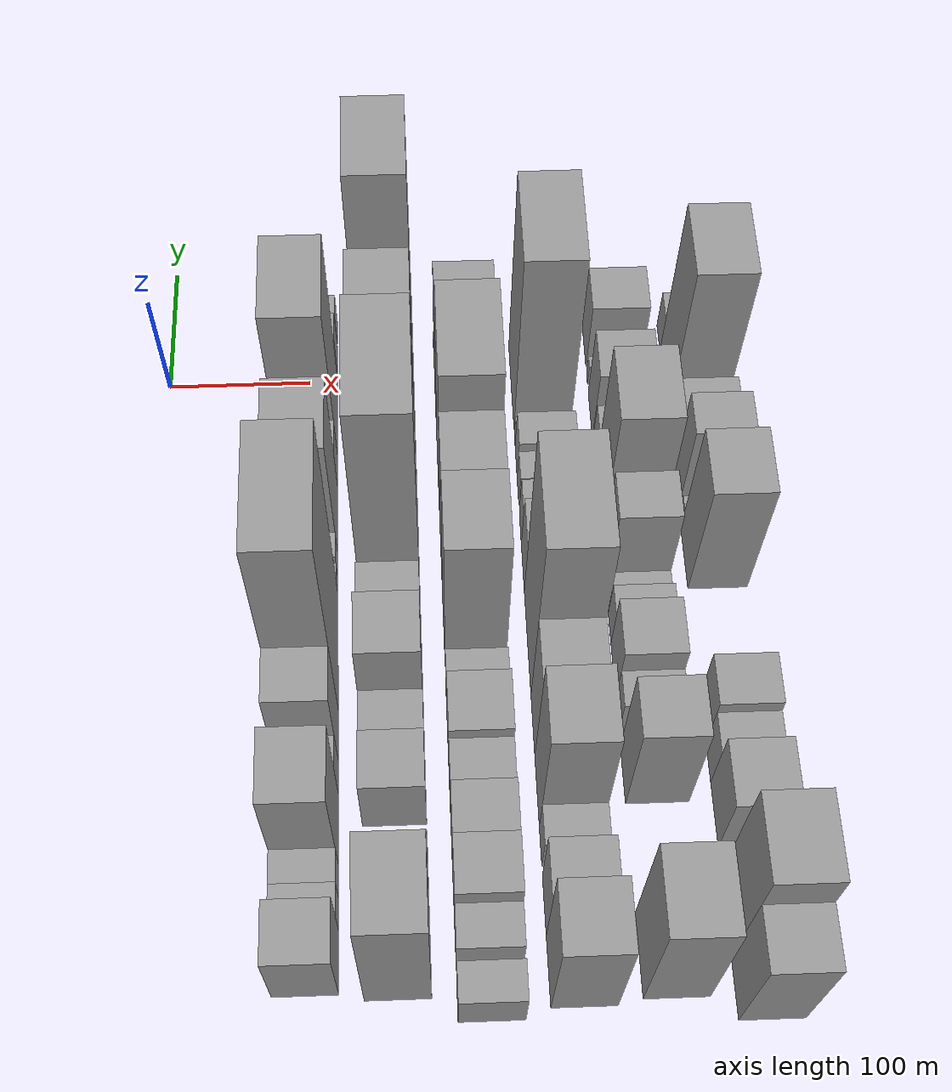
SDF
<sdf version="1.6">
 <world name="default">
  <model name="building_10">
   <static>1</static>
   <pose>100.0000 -418.1166 0 0.000000 0.000000 0.000000</pose>
   <link name="link">
    <pose>0 0 37.50 0 0 0</pose>
    <collision name="collision"><geometry><box><size>40.0000 37.5377 75.0000</size></box></geometry></collision>
    <visual name="visual">
     <cast_shadows>0</cast_shadows>
     <geometry><box><size>40.0000 37.5377 75.0000</size></box></geometry>
     <material>
      <script>
       <uri>model://grey_wall/materials/scripts</uri>
       <uri>model://grey_wall/materials/textures</uri>
       <name>vrc/grey_wall</name>
      </script>
     </material>
    </visual>
   </link>
  </model>
  <model name="building_11">
   <static>1</static>
   <pose>100.0000 -389.1185 0 0.000000 0.000000 0.000000</pose>
   <link name="link">
    <pose>0 0 18.00 0 0 0</pose>
    <collision name="collision"><geometry><box><size>40.0000 20.4583 36.0000</size></box></geometry></collision>
    <visual name="visual">
     <cast_shadows>0</cast_shadows>
     <geometry><box><size>40.0000 20.4583 36.0000</size></box></geometry>
     <material>
      <script>
       <uri>model://grey_wall/materials/scripts</uri>
       <uri>model://grey_wall/materials/textures</uri>
       <name>vrc/grey_wall</name>
      </script>
     </material>
    </visual>
   </link>
  </model>
  <model name="building_12">
   <static>1</static>
   <pose>100.0000 -368.4533 0 0.000000 0.000000 0.000000</pose>
   <link name="link">
    <pose>0 0 18.00 0 0 0</pose>
    <collision name="collision"><geometry><box><size>40.0000 20.8721 36.0000</size></box></geometry></collision>
    <visual name="visual">
     <cast_shadows>0</cast_shadows>
     <geometry><box><size>40.0000 20.8721 36.0000</size></box></geometry>
     <material>
      <script>
       <uri>model://grey_wall/materials/scripts</uri>
       <uri>model://grey_wall/materials/textures</uri>
       <name>vrc/grey_wall</name>
      </script>
     </material>
    </visual>
   </link>
  </model>
  <model name="building_13">
   <static>1</static>
   <pose>100.0000 -335.2118 0 0.000000 0.000000 0.000000</pose>
   <link name="link">
    <pose>0 0 58.50 0 0 0</pose>
    <collision name="collision"><geometry><box><size>40.0000 45.6110 117.0000</size></box></geometry></collision>
    <visual name="visual">
     <cast_shadows>0</cast_shadows>
     <geometry><box><size>40.0000 45.6110 117.0000</size></box></geometry>
     <material>
      <script>
       <uri>model://grey_wall/materials/scripts</uri>
       <uri>model://grey_wall/materials/textures</uri>
       <name>vrc/grey_wall</name>
      </script>
     </material>
    </visual>
   </link>
  </model>
  <model name="building_14">
   <static>1</static>
   <pose>100.0000 -301.1327 0 0.000000 0.000000 0.000000</pose>
   <link name="link">
    <pose>0 0 22.50 0 0 0</pose>
    <collision name="collision"><geometry><box><size>40.0000 22.5473 45.0000</size></box></geometry></collision>
    <visual name="visual">
     <cast_shadows>0</cast_shadows>
     <geometry><box><size>40.0000 22.5473 45.0000</size></box></geometry>
     <material>
      <script>
       <uri>model://grey_wall/materials/scripts</uri>
       <uri>model://grey_wall/materials/textures</uri>
       <name>vrc/grey_wall</name>
      </script>
     </material>
    </visual>
   </link>
  </model>
  <model name="building_15">
   <static>1</static>
   <pose>100.0000 -272.3482 0 0.000000 0.000000 0.000000</pose>
   <link name="link">
    <pose>0 0 49.50 0 0 0</pose>
    <collision name="collision"><geometry><box><size>40.0000 35.0216 99.0000</size></box></geometry></collision>
    <visual name="visual">
     <cast_shadows>0</cast_shadows>
     <geometry><box><size>40.0000 35.0216 99.0000</size></box></geometry>
     <material>
      <script>
       <uri>model://grey_wall/materials/scripts</uri>
       <uri>model://grey_wall/materials/textures</uri>
       <name>vrc/grey_wall</name>
      </script>
     </material>
    </visual>
   </link>
  </model>
  <model name="building_16">
   <static>1</static>
   <pose>100.0000 -213.4402 0 0.000000 0.000000 0.000000</pose>
   <link name="link">
    <pose>0 0 109.50 0 0 0</pose>
    <collision name="collision"><geometry><box><size>40.0000 82.7944 219.0000</size></box></geometry></collision>
    <visual name="visual">
     <cast_shadows>0</cast_shadows>
     <geometry><box><size>40.0000 82.7944 219.0000</size></box></geometry>
     <material>
      <script>
       <uri>model://grey_wall/materials/scripts</uri>
       <uri>model://grey_wall/materials/textures</uri>
       <name>vrc/grey_wall</name>
      </script>
     </material>
    </visual>
   </link>
  </model>
  <model name="building_17">
   <static>1</static>
   <pose>100.0000 -166.0867 0 0.000000 0.000000 0.000000</pose>
   <link name="link">
    <pose>0 0 12.00 0 0 0</pose>
    <collision name="collision"><geometry><box><size>40.0000 11.9127 24.0000</size></box></geometry></collision>
    <visual name="visual">
     <cast_shadows>0</cast_shadows>
     <geometry><box><size>40.0000 11.9127 24.0000</size></box></geometry>
     <material>
      <script>
       <uri>model://grey_wall/materials/scripts</uri>
       <uri>model://grey_wall/materials/textures</uri>
       <name>vrc/grey_wall</name>
      </script>
     </material>
    </visual>
   </link>
  </model>
  <model name="building_18">
   <static>1</static>
   <pose>100.0000 -150.8019 0 0.000000 0.000000 0.000000</pose>
   <link name="link">
    <pose>0 0 16.50 0 0 0</pose>
    <collision name="collision"><geometry><box><size>40.0000 18.6569 33.0000</size></box></geometry></collision>
    <visual name="visual">
     <cast_shadows>0</cast_shadows>
     <geometry><box><size>40.0000 18.6569 33.0000</size></box></geometry>
     <material>
      <script>
       <uri>model://grey_wall/materials/scripts</uri>
       <uri>model://grey_wall/materials/textures</uri>
       <name>vrc/grey_wall</name>
      </script>
     </material>
    </visual>
   </link>
  </model>
  <model name="building_19">
   <static>1</static>
   <pose>100.0000 -115.2629 0 0.000000 0.000000 0.000000</pose>
   <link name="link">
    <pose>0 0 69.00 0 0 0</pose>
    <collision name="collision"><geometry><box><size>40.0000 52.4211 138.0000</size></box></geometry></collision>
    <visual name="visual">
     <cast_shadows>0</cast_shadows>
     <geometry><box><size>40.0000 52.4211 138.0000</size></box></geometry>
     <material>
      <script>
       <uri>model://grey_wall/materials/scripts</uri>
       <uri>model://grey_wall/materials/textures</uri>
       <name>vrc/grey_wall</name>
      </script>
     </material>
    </visual>
   </link>
  </model>
  <model name="building_20">
   <static>1</static>
   <pose>100.0000 -76.1995 0 0.000000 0.000000 0.000000</pose>
   <link name="link">
    <pose>0 0 24.00 0 0 0</pose>
    <collision name="collision"><geometry><box><size>40.0000 25.7056 48.0000</size></box></geometry></collision>
    <visual name="visual">
     <cast_shadows>0</cast_shadows>
     <geometry><box><size>40.0000 25.7056 48.0000</size></box></geometry>
     <material>
      <script>
       <uri>model://grey_wall/materials/scripts</uri>
       <uri>model://grey_wall/materials/textures</uri>
       <name>vrc/grey_wall</name>
      </script>
     </material>
    </visual>
   </link>
  </model>
  <model name="building_21">
   <static>1</static>
   <pose>100.0000 -31.2883 0 0.000000 0.000000 0.000000</pose>
   <link name="link">
    <pose>0 0 82.50 0 0 0</pose>
    <collision name="collision"><geometry><box><size>40.0000 64.1168 165.0000</size></box></geometry></collision>
    <visual name="visual">
     <cast_shadows>0</cast_shadows>
     <geometry><box><size>40.0000 64.1168 165.0000</size></box></geometry>
     <material>
      <script>
       <uri>model://grey_wall/materials/scripts</uri>
       <uri>model://grey_wall/materials/textures</uri>
       <name>vrc/grey_wall</name>
      </script>
     </material>
    </visual>
   </link>
  </model>
  <model name="building_22">
   <static>1</static>
   <pose>100.0000 18.5439 0 0.000000 0.000000 0.000000</pose>
   <link name="link">
    <pose>0 0 21.00 0 0 0</pose>
    <collision name="collision"><geometry><box><size>40.0000 23.5476 42.0000</size></box></geometry></collision>
    <visual name="visual">
     <cast_shadows>0</cast_shadows>
     <geometry><box><size>40.0000 23.5476 42.0000</size></box></geometry>
     <material>
      <script>
       <uri>model://grey_wall/materials/scripts</uri>
       <uri>model://grey_wall/materials/textures</uri>
       <name>vrc/grey_wall</name>
      </script>
     </material>
    </visual>
   </link>
  </model>
  <model name="building_23">
   <static>1</static>
   <pose>100.0000 43.1436 0 0.000000 0.000000 0.000000</pose>
   <link name="link">
    <pose>0 0 16.50 0 0 0</pose>
    <collision name="collision"><geometry><box><size>40.0000 19.6517 33.0000</size></box></geometry></collision>
    <visual name="visual">
     <cast_shadows>0</cast_shadows>
     <geometry><box><size>40.0000 19.6517 33.0000</size></box></geometry>
     <material>
      <script>
       <uri>model://grey_wall/materials/scripts</uri>
       <uri>model://grey_wall/materials/textures</uri>
       <name>vrc/grey_wall</name>
      </script>
     </material>
    </visual>
   </link>
  </model>
  <model name="building_63">
   <static>1</static>
   <pose>155.0000 -413.3014 0 0.000000 0.000000 0.000000</pose>
   <link name="link">
    <pose>0 0 73.50 0 0 0</pose>
    <collision name="collision"><geometry><box><size>40.0000 55.3907 147.0000</size></box></geometry></collision>
    <visual name="visual">
     <cast_shadows>0</cast_shadows>
     <geometry><box><size>40.0000 55.3907 147.0000</size></box></geometry>
     <material>
      <script>
       <uri>model://grey_wall/materials/scripts</uri>
       <uri>model://grey_wall/materials/textures</uri>
       <name>vrc/grey_wall</name>
      </script>
     </material>
    </visual>
   </link>
  </model>
  <model name="building_64">
   <static>1</static>
   <pose>155.0000 -370.1292 0 0.000000 0.000000 0.000000</pose>
   <link name="link">
    <pose>0 0 27.00 0 0 0</pose>
    <collision name="collision"><geometry><box><size>40.0000 30.9537 54.0000</size></box></geometry></collision>
    <visual name="visual">
     <cast_shadows>0</cast_shadows>
     <geometry><box><size>40.0000 30.9537 54.0000</size></box></geometry>
     <material>
      <script>
       <uri>model://grey_wall/materials/scripts</uri>
       <uri>model://grey_wall/materials/textures</uri>
       <name>vrc/grey_wall</name>
      </script>
     </material>
    </visual>
   </link>
  </model>
  <model name="building_65">
   <static>1</static>
   <pose>155.0000 -347.6323 0 0.000000 0.000000 0.000000</pose>
   <link name="link">
    <pose>0 0 9.00 0 0 0</pose>
    <collision name="collision"><geometry><box><size>40.0000 8.0401 18.0000</size></box></geometry></collision>
    <visual name="visual">
     <cast_shadows>0</cast_shadows>
     <geometry><box><size>40.0000 8.0401 18.0000</size></box></geometry>
     <material>
      <script>
       <uri>model://grey_wall/materials/scripts</uri>
       <uri>model://grey_wall/materials/textures</uri>
       <name>vrc/grey_wall</name>
      </script>
     </material>
    </visual>
   </link>
  </model>
  <model name="building_66">
   <static>1</static>
   <pose>155.0000 -315.2518 0 0.000000 0.000000 0.000000</pose>
   <link name="link">
    <pose>0 0 34.50 0 0 0</pose>
    <collision name="collision"><geometry><box><size>40.0000 36.7208 69.0000</size></box></geometry></collision>
    <visual name="visual">
     <cast_shadows>0</cast_shadows>
     <geometry><box><size>40.0000 36.7208 69.0000</size></box></geometry>
     <material>
      <script>
       <uri>model://grey_wall/materials/scripts</uri>
       <uri>model://grey_wall/materials/textures</uri>
       <name>vrc/grey_wall</name>
      </script>
     </material>
    </visual>
   </link>
  </model>
  <model name="building_67">
   <static>1</static>
   <pose>155.0000 -281.4649 0 0.000000 0.000000 0.000000</pose>
   <link name="link">
    <pose>0 0 28.50 0 0 0</pose>
    <collision name="collision"><geometry><box><size>40.0000 30.8529 57.0000</size></box></geometry></collision>
    <visual name="visual">
     <cast_shadows>0</cast_shadows>
     <geometry><box><size>40.0000 30.8529 57.0000</size></box></geometry>
     <material>
      <script>
       <uri>model://grey_wall/materials/scripts</uri>
       <uri>model://grey_wall/materials/textures</uri>
       <name>vrc/grey_wall</name>
      </script>
     </material>
    </visual>
   </link>
  </model>
  <model name="building_68">
   <static>1</static>
   <pose>155.0000 -245.8051 0 0.000000 0.000000 0.000000</pose>
   <link name="link">
    <pose>0 0 55.50 0 0 0</pose>
    <collision name="collision"><geometry><box><size>40.0000 40.4668 111.0000</size></box></geometry></collision>
    <visual name="visual">
     <cast_shadows>0</cast_shadows>
     <geometry><box><size>40.0000 40.4668 111.0000</size></box></geometry>
     <material>
      <script>
       <uri>model://grey_wall/materials/scripts</uri>
       <uri>model://grey_wall/materials/textures</uri>
       <name>vrc/grey_wall</name>
      </script>
     </material>
    </visual>
   </link>
  </model>
  <model name="building_69">
   <static>1</static>
   <pose>155.0000 -205.2979 0 0.000000 0.000000 0.000000</pose>
   <link name="link">
    <pose>0 0 36.00 0 0 0</pose>
    <collision name="collision"><geometry><box><size>40.0000 40.5476 72.0000</size></box></geometry></collision>
    <visual name="visual">
     <cast_shadows>0</cast_shadows>
     <geometry><box><size>40.0000 40.5476 72.0000</size></box></geometry>
     <material>
      <script>
       <uri>model://grey_wall/materials/scripts</uri>
       <uri>model://grey_wall/materials/textures</uri>
       <name>vrc/grey_wall</name>
      </script>
     </material>
    </visual>
   </link>
  </model>
  <model name="building_70">
   <static>1</static>
   <pose>155.0000 -133.8732 0 0.000000 0.000000 0.000000</pose>
   <link name="link">
    <pose>0 0 112.50 0 0 0</pose>
    <collision name="collision"><geometry><box><size>40.0000 82.3018 225.0000</size></box></geometry></collision>
    <visual name="visual">
     <cast_shadows>0</cast_shadows>
     <geometry><box><size>40.0000 82.3018 225.0000</size></box></geometry>
     <material>
      <script>
       <uri>model://grey_wall/materials/scripts</uri>
       <uri>model://grey_wall/materials/textures</uri>
       <name>vrc/grey_wall</name>
      </script>
     </material>
    </visual>
   </link>
  </model>
  <model name="building_71">
   <static>1</static>
   <pose>155.0000 -59.0609 0 0.000000 0.000000 0.000000</pose>
   <link name="link">
    <pose>0 0 93.00 0 0 0</pose>
    <collision name="collision"><geometry><box><size>40.0000 61.3227 186.0000</size></box></geometry></collision>
    <visual name="visual">
     <cast_shadows>0</cast_shadows>
     <geometry><box><size>40.0000 61.3227 186.0000</size></box></geometry>
     <material>
      <script>
       <uri>model://grey_wall/materials/scripts</uri>
       <uri>model://grey_wall/materials/textures</uri>
       <name>vrc/grey_wall</name>
      </script>
     </material>
    </visual>
   </link>
  </model>
  <model name="building_72">
   <static>1</static>
   <pose>155.0000 -11.2397 0 0.000000 0.000000 0.000000</pose>
   <link name="link">
    <pose>0 0 31.50 0 0 0</pose>
    <collision name="collision"><geometry><box><size>40.0000 34.3198 63.0000</size></box></geometry></collision>
    <visual name="visual">
     <cast_shadows>0</cast_shadows>
     <geometry><box><size>40.0000 34.3198 63.0000</size></box></geometry>
     <material>
      <script>
       <uri>model://grey_wall/materials/scripts</uri>
       <uri>model://grey_wall/materials/textures</uri>
       <name>vrc/grey_wall</name>
      </script>
     </material>
    </visual>
   </link>
  </model>
  <model name="building_73">
   <static>1</static>
   <pose>155.0000 38.2795 0 0.000000 0.000000 0.000000</pose>
   <link name="link">
    <pose>0 0 106.50 0 0 0</pose>
    <collision name="collision"><geometry><box><size>40.0000 64.7186 213.0000</size></box></geometry></collision>
    <visual name="visual">
     <cast_shadows>0</cast_shadows>
     <geometry><box><size>40.0000 64.7186 213.0000</size></box></geometry>
     <material>
      <script>
       <uri>model://grey_wall/materials/scripts</uri>
       <uri>model://grey_wall/materials/textures</uri>
       <name>vrc/grey_wall</name>
      </script>
     </material>
    </visual>
   </link>
  </model>
  <model name="building_111">
   <static>1</static>
   <pose>210.0000 -443.2050 0 0.000000 0.000000 0.000000</pose>
   <link name="link">
    <pose>0 0 24.00 0 0 0</pose>
    <collision name="collision"><geometry><box><size>40.0000 24.2456 48.0000</size></box></geometry></collision>
    <visual name="visual">
     <cast_shadows>0</cast_shadows>
     <geometry><box><size>40.0000 24.2456 48.0000</size></box></geometry>
     <material>
      <script>
       <uri>model://grey_wall/materials/scripts</uri>
       <uri>model://grey_wall/materials/textures</uri>
       <name>vrc/grey_wall</name>
      </script>
     </material>
    </visual>
   </link>
  </model>
  <model name="building_112">
   <static>1</static>
   <pose>210.0000 -411.8444 0 0.000000 0.000000 0.000000</pose>
   <link name="link">
    <pose>0 0 25.50 0 0 0</pose>
    <collision name="collision"><geometry><box><size>40.0000 26.4756 51.0000</size></box></geometry></collision>
    <visual name="visual">
     <cast_shadows>0</cast_shadows>
     <geometry><box><size>40.0000 26.4756 51.0000</size></box></geometry>
     <material>
      <script>
       <uri>model://grey_wall/materials/scripts</uri>
       <uri>model://grey_wall/materials/textures</uri>
       <name>vrc/grey_wall</name>
      </script>
     </material>
    </visual>
   </link>
  </model>
  <model name="building_113">
   <static>1</static>
   <pose>210.0000 -380.3695 0 0.000000 0.000000 0.000000</pose>
   <link name="link">
    <pose>0 0 34.50 0 0 0</pose>
    <collision name="collision"><geometry><box><size>40.0000 36.4743 69.0000</size></box></geometry></collision>
    <visual name="visual">
     <cast_shadows>0</cast_shadows>
     <geometry><box><size>40.0000 36.4743 69.0000</size></box></geometry>
     <material>
      <script>
       <uri>model://grey_wall/materials/scripts</uri>
       <uri>model://grey_wall/materials/textures</uri>
       <name>vrc/grey_wall</name>
      </script>
     </material>
    </visual>
   </link>
  </model>
  <model name="building_114">
   <static>1</static>
   <pose>210.0000 -345.5111 0 0.000000 0.000000 0.000000</pose>
   <link name="link">
    <pose>0 0 33.00 0 0 0</pose>
    <collision name="collision"><geometry><box><size>40.0000 33.2425 66.0000</size></box></geometry></collision>
    <visual name="visual">
     <cast_shadows>0</cast_shadows>
     <geometry><box><size>40.0000 33.2425 66.0000</size></box></geometry>
     <material>
      <script>
       <uri>model://grey_wall/materials/scripts</uri>
       <uri>model://grey_wall/materials/textures</uri>
       <name>vrc/grey_wall</name>
      </script>
     </material>
    </visual>
   </link>
  </model>
  <model name="building_115">
   <static>1</static>
   <pose>210.0000 -313.5242 0 0.000000 0.000000 0.000000</pose>
   <link name="link">
    <pose>0 0 27.00 0 0 0</pose>
    <collision name="collision"><geometry><box><size>40.0000 30.7312 54.0000</size></box></geometry></collision>
    <visual name="visual">
     <cast_shadows>0</cast_shadows>
     <geometry><box><size>40.0000 30.7312 54.0000</size></box></geometry>
     <material>
      <script>
       <uri>model://grey_wall/materials/scripts</uri>
       <uri>model://grey_wall/materials/textures</uri>
       <name>vrc/grey_wall</name>
      </script>
     </material>
    </visual>
   </link>
  </model>
  <model name="building_116">
   <static>1</static>
   <pose>210.0000 -278.5037 0 0.000000 0.000000 0.000000</pose>
   <link name="link">
    <pose>0 0 33.00 0 0 0</pose>
    <collision name="collision"><geometry><box><size>40.0000 39.3099 66.0000</size></box></geometry></collision>
    <visual name="visual">
     <cast_shadows>0</cast_shadows>
     <geometry><box><size>40.0000 39.3099 66.0000</size></box></geometry>
     <material>
      <script>
       <uri>model://grey_wall/materials/scripts</uri>
       <uri>model://grey_wall/materials/textures</uri>
       <name>vrc/grey_wall</name>
      </script>
     </material>
    </visual>
   </link>
  </model>
  <model name="building_117">
   <static>1</static>
   <pose>210.0000 -244.0748 0 0.000000 0.000000 0.000000</pose>
   <link name="link">
    <pose>0 0 21.00 0 0 0</pose>
    <collision name="collision"><geometry><box><size>40.0000 21.5480 42.0000</size></box></geometry></collision>
    <visual name="visual">
     <cast_shadows>0</cast_shadows>
     <geometry><box><size>40.0000 21.5480 42.0000</size></box></geometry>
     <material>
      <script>
       <uri>model://grey_wall/materials/scripts</uri>
       <uri>model://grey_wall/materials/textures</uri>
       <name>vrc/grey_wall</name>
      </script>
     </material>
    </visual>
   </link>
  </model>
  <model name="building_118">
   <static>1</static>
   <pose>210.0000 -198.7493 0 0.000000 0.000000 0.000000</pose>
   <link name="link">
    <pose>0 0 79.50 0 0 0</pose>
    <collision name="collision"><geometry><box><size>40.0000 53.1029 159.0000</size></box></geometry></collision>
    <visual name="visual">
     <cast_shadows>0</cast_shadows>
     <geometry><box><size>40.0000 53.1029 159.0000</size></box></geometry>
     <material>
      <script>
       <uri>model://grey_wall/materials/scripts</uri>
       <uri>model://grey_wall/materials/textures</uri>
       <name>vrc/grey_wall</name>
      </script>
     </material>
    </visual>
   </link>
  </model>
  <model name="building_119">
   <static>1</static>
   <pose>210.0000 -148.7562 0 0.000000 0.000000 0.000000</pose>
   <link name="link">
    <pose>0 0 75.00 0 0 0</pose>
    <collision name="collision"><geometry><box><size>40.0000 46.8835 150.0000</size></box></geometry></collision>
    <visual name="visual">
     <cast_shadows>0</cast_shadows>
     <geometry><box><size>40.0000 46.8835 150.0000</size></box></geometry>
     <material>
      <script>
       <uri>model://grey_wall/materials/scripts</uri>
       <uri>model://grey_wall/materials/textures</uri>
       <name>vrc/grey_wall</name>
      </script>
     </material>
    </visual>
   </link>
  </model>
  <model name="building_120">
   <static>1</static>
   <pose>210.0000 -87.0264 0 0.000000 0.000000 0.000000</pose>
   <link name="link">
    <pose>0 0 91.50 0 0 0</pose>
    <collision name="collision"><geometry><box><size>40.0000 70.5760 183.0000</size></box></geometry></collision>
    <visual name="visual">
     <cast_shadows>0</cast_shadows>
     <geometry><box><size>40.0000 70.5760 183.0000</size></box></geometry>
     <material>
      <script>
       <uri>model://grey_wall/materials/scripts</uri>
       <uri>model://grey_wall/materials/textures</uri>
       <name>vrc/grey_wall</name>
      </script>
     </material>
    </visual>
   </link>
  </model>
  <model name="building_121">
   <static>1</static>
   <pose>210.0000 -19.8621 0 0.000000 0.000000 0.000000</pose>
   <link name="link">
    <pose>0 0 64.50 0 0 0</pose>
    <collision name="collision"><geometry><box><size>40.0000 49.7526 129.0000</size></box></geometry></collision>
    <visual name="visual">
     <cast_shadows>0</cast_shadows>
     <geometry><box><size>40.0000 49.7526 129.0000</size></box></geometry>
     <material>
      <script>
       <uri>model://grey_wall/materials/scripts</uri>
       <uri>model://grey_wall/materials/textures</uri>
       <name>vrc/grey_wall</name>
      </script>
     </material>
    </visual>
   </link>
  </model>
  <model name="building_122">
   <static>1</static>
   <pose>210.0000 16.7778 0 0.000000 0.000000 0.000000</pose>
   <link name="link">
    <pose>0 0 10.50 0 0 0</pose>
    <collision name="collision"><geometry><box><size>40.0000 9.5271 21.0000</size></box></geometry></collision>
    <visual name="visual">
     <cast_shadows>0</cast_shadows>
     <geometry><box><size>40.0000 9.5271 21.0000</size></box></geometry>
     <material>
      <script>
       <uri>model://grey_wall/materials/scripts</uri>
       <uri>model://grey_wall/materials/textures</uri>
       <name>vrc/grey_wall</name>
      </script>
     </material>
    </visual>
   </link>
  </model>
  <model name="building_123">
   <static>1</static>
   <pose>210.0000 25.4149 0 0.000000 0.000000 0.000000</pose>
   <link name="link">
    <pose>0 0 9.00 0 0 0</pose>
    <collision name="collision"><geometry><box><size>40.0000 7.7472 18.0000</size></box></geometry></collision>
    <visual name="visual">
     <cast_shadows>0</cast_shadows>
     <geometry><box><size>40.0000 7.7472 18.0000</size></box></geometry>
     <material>
      <script>
       <uri>model://grey_wall/materials/scripts</uri>
       <uri>model://grey_wall/materials/textures</uri>
       <name>vrc/grey_wall</name>
      </script>
     </material>
    </visual>
   </link>
  </model>
  <model name="building_168">
   <static>1</static>
   <pose>265.0000 -427.7121 0 0.000000 0.000000 0.000000</pose>
   <link name="link">
    <pose>0 0 60.00 0 0 0</pose>
    <collision name="collision"><geometry><box><size>40.0000 42.5895 120.0000</size></box></geometry></collision>
    <visual name="visual">
     <cast_shadows>0</cast_shadows>
     <geometry><box><size>40.0000 42.5895 120.0000</size></box></geometry>
     <material>
      <script>
       <uri>model://grey_wall/materials/scripts</uri>
       <uri>model://grey_wall/materials/textures</uri>
       <name>vrc/grey_wall</name>
      </script>
     </material>
    </visual>
   </link>
  </model>
  <model name="building_169">
   <static>1</static>
   <pose>265.0000 -387.6341 0 0.000000 0.000000 0.000000</pose>
   <link name="link">
    <pose>0 0 37.50 0 0 0</pose>
    <collision name="collision"><geometry><box><size>40.0000 37.5665 75.0000</size></box></geometry></collision>
    <visual name="visual">
     <cast_shadows>0</cast_shadows>
     <geometry><box><size>40.0000 37.5665 75.0000</size></box></geometry>
     <material>
      <script>
       <uri>model://grey_wall/materials/scripts</uri>
       <uri>model://grey_wall/materials/textures</uri>
       <name>vrc/grey_wall</name>
      </script>
     </material>
    </visual>
   </link>
  </model>
  <model name="building_170">
   <static>1</static>
   <pose>265.0000 -350.3621 0 0.000000 0.000000 0.000000</pose>
   <link name="link">
    <pose>0 0 21.00 0 0 0</pose>
    <collision name="collision"><geometry><box><size>40.0000 24.9775 42.0000</size></box></geometry></collision>
    <visual name="visual">
     <cast_shadows>0</cast_shadows>
     <geometry><box><size>40.0000 24.9775 42.0000</size></box></geometry>
     <material>
      <script>
       <uri>model://grey_wall/materials/scripts</uri>
       <uri>model://grey_wall/materials/textures</uri>
       <name>vrc/grey_wall</name>
      </script>
     </material>
    </visual>
   </link>
  </model>
  <model name="building_171">
   <static>1</static>
   <pose>265.0000 -314.4730 0 0.000000 0.000000 0.000000</pose>
   <link name="link">
    <pose>0 0 70.50 0 0 0</pose>
    <collision name="collision"><geometry><box><size>40.0000 46.8007 141.0000</size></box></geometry></collision>
    <visual name="visual">
     <cast_shadows>0</cast_shadows>
     <geometry><box><size>40.0000 46.8007 141.0000</size></box></geometry>
     <material>
      <script>
       <uri>model://grey_wall/materials/scripts</uri>
       <uri>model://grey_wall/materials/textures</uri>
       <name>vrc/grey_wall</name>
      </script>
     </material>
    </visual>
   </link>
  </model>
  <model name="building_172">
   <static>1</static>
   <pose>265.0000 -270.1294 0 0.000000 0.000000 0.000000</pose>
   <link name="link">
    <pose>0 0 57.00 0 0 0</pose>
    <collision name="collision"><geometry><box><size>40.0000 41.8864 114.0000</size></box></geometry></collision>
    <visual name="visual">
     <cast_shadows>0</cast_shadows>
     <geometry><box><size>40.0000 41.8864 114.0000</size></box></geometry>
     <material>
      <script>
       <uri>model://grey_wall/materials/scripts</uri>
       <uri>model://grey_wall/materials/textures</uri>
       <name>vrc/grey_wall</name>
      </script>
     </material>
    </visual>
   </link>
  </model>
  <model name="building_173">
   <static>1</static>
   <pose>265.0000 -211.3545 0 0.000000 0.000000 0.000000</pose>
   <link name="link">
    <pose>0 0 100.50 0 0 0</pose>
    <collision name="collision"><geometry><box><size>40.0000 75.6633 201.0000</size></box></geometry></collision>
    <visual name="visual">
     <cast_shadows>0</cast_shadows>
     <geometry><box><size>40.0000 75.6633 201.0000</size></box></geometry>
     <material>
      <script>
       <uri>model://grey_wall/materials/scripts</uri>
       <uri>model://grey_wall/materials/textures</uri>
       <name>vrc/grey_wall</name>
      </script>
     </material>
    </visual>
   </link>
  </model>
  <model name="building_174">
   <static>1</static>
   <pose>265.0000 -155.5771 0 0.000000 0.000000 0.000000</pose>
   <link name="link">
    <pose>0 0 31.50 0 0 0</pose>
    <collision name="collision"><geometry><box><size>40.0000 35.8916 63.0000</size></box></geometry></collision>
    <visual name="visual">
     <cast_shadows>0</cast_shadows>
     <geometry><box><size>40.0000 35.8916 63.0000</size></box></geometry>
     <material>
      <script>
       <uri>model://grey_wall/materials/scripts</uri>
       <uri>model://grey_wall/materials/textures</uri>
       <name>vrc/grey_wall</name>
      </script>
     </material>
    </visual>
   </link>
  </model>
  <model name="building_175">
   <static>1</static>
   <pose>265.0000 -125.1279 0 0.000000 0.000000 0.000000</pose>
   <link name="link">
    <pose>0 0 22.50 0 0 0</pose>
    <collision name="collision"><geometry><box><size>40.0000 25.0067 45.0000</size></box></geometry></collision>
    <visual name="visual">
     <cast_shadows>0</cast_shadows>
     <geometry><box><size>40.0000 25.0067 45.0000</size></box></geometry>
     <material>
      <script>
       <uri>model://grey_wall/materials/scripts</uri>
       <uri>model://grey_wall/materials/textures</uri>
       <name>vrc/grey_wall</name>
      </script>
     </material>
    </visual>
   </link>
  </model>
  <model name="building_176">
   <static>1</static>
   <pose>265.0000 -95.9091 0 0.000000 0.000000 0.000000</pose>
   <link name="link">
    <pose>0 0 18.00 0 0 0</pose>
    <collision name="collision"><geometry><box><size>40.0000 21.4309 36.0000</size></box></geometry></collision>
    <visual name="visual">
     <cast_shadows>0</cast_shadows>
     <geometry><box><size>40.0000 21.4309 36.0000</size></box></geometry>
     <material>
      <script>
       <uri>model://grey_wall/materials/scripts</uri>
       <uri>model://grey_wall/materials/textures</uri>
       <name>vrc/grey_wall</name>
      </script>
     </material>
    </visual>
   </link>
  </model>
  <model name="building_177">
   <static>1</static>
   <pose>265.0000 -72.2502 0 0.000000 0.000000 0.000000</pose>
   <link name="link">
    <pose>0 0 22.50 0 0 0</pose>
    <collision name="collision"><geometry><box><size>40.0000 25.8870 45.0000</size></box></geometry></collision>
    <visual name="visual">
     <cast_shadows>0</cast_shadows>
     <geometry><box><size>40.0000 25.8870 45.0000</size></box></geometry>
     <material>
      <script>
       <uri>model://grey_wall/materials/scripts</uri>
       <uri>model://grey_wall/materials/textures</uri>
       <name>vrc/grey_wall</name>
      </script>
     </material>
    </visual>
   </link>
  </model>
  <model name="building_178">
   <static>1</static>
   <pose>265.0000 -54.4343 0 0.000000 0.000000 0.000000</pose>
   <link name="link">
    <pose>0 0 12.00 0 0 0</pose>
    <collision name="collision"><geometry><box><size>40.0000 9.7447 24.0000</size></box></geometry></collision>
    <visual name="visual">
     <cast_shadows>0</cast_shadows>
     <geometry><box><size>40.0000 9.7447 24.0000</size></box></geometry>
     <material>
      <script>
       <uri>model://grey_wall/materials/scripts</uri>
       <uri>model://grey_wall/materials/textures</uri>
       <name>vrc/grey_wall</name>
      </script>
     </material>
    </visual>
   </link>
  </model>
  <model name="building_179">
   <static>1</static>
   <pose>265.0000 -8.8676 0 0.000000 0.000000 0.000000</pose>
   <link name="link">
    <pose>0 0 94.50 0 0 0</pose>
    <collision name="collision"><geometry><box><size>40.0000 71.3886 189.0000</size></box></geometry></collision>
    <visual name="visual">
     <cast_shadows>0</cast_shadows>
     <geometry><box><size>40.0000 71.3886 189.0000</size></box></geometry>
     <material>
      <script>
       <uri>model://grey_wall/materials/scripts</uri>
       <uri>model://grey_wall/materials/textures</uri>
       <name>vrc/grey_wall</name>
      </script>
     </material>
    </visual>
   </link>
  </model>
  <model name="building_215">
   <static>1</static>
   <pose>320.0000 -419.7920 0 0.000000 0.000000 0.000000</pose>
   <link name="link">
    <pose>0 0 67.50 0 0 0</pose>
    <collision name="collision"><geometry><box><size>40.0000 51.7668 135.0000</size></box></geometry></collision>
    <visual name="visual">
     <cast_shadows>0</cast_shadows>
     <geometry><box><size>40.0000 51.7668 135.0000</size></box></geometry>
     <material>
      <script>
       <uri>model://grey_wall/materials/scripts</uri>
       <uri>model://grey_wall/materials/textures</uri>
       <name>vrc/grey_wall</name>
      </script>
     </material>
    </visual>
   </link>
  </model>
  <model name="building_216">
   <static>1</static>
   <pose>320.0000 -305.5341 0 0.000000 0.000000 0.000000</pose>
   <link name="link">
    <pose>0 0 55.50 0 0 0</pose>
    <collision name="collision"><geometry><box><size>40.0000 38.2497 111.0000</size></box></geometry></collision>
    <visual name="visual">
     <cast_shadows>0</cast_shadows>
     <geometry><box><size>40.0000 38.2497 111.0000</size></box></geometry>
     <material>
      <script>
       <uri>model://grey_wall/materials/scripts</uri>
       <uri>model://grey_wall/materials/textures</uri>
       <name>vrc/grey_wall</name>
      </script>
     </material>
    </visual>
   </link>
  </model>
  <model name="building_217">
   <static>1</static>
   <pose>320.0000 -264.3094 0 0.000000 0.000000 0.000000</pose>
   <link name="link">
    <pose>0 0 21.00 0 0 0</pose>
    <collision name="collision"><geometry><box><size>40.0000 24.1997 42.0000</size></box></geometry></collision>
    <visual name="visual">
     <cast_shadows>0</cast_shadows>
     <geometry><box><size>40.0000 24.1997 42.0000</size></box></geometry>
     <material>
      <script>
       <uri>model://grey_wall/materials/scripts</uri>
       <uri>model://grey_wall/materials/textures</uri>
       <name>vrc/grey_wall</name>
      </script>
     </material>
    </visual>
   </link>
  </model>
  <model name="building_218">
   <static>1</static>
   <pose>320.0000 -232.9948 0 0.000000 0.000000 0.000000</pose>
   <link name="link">
    <pose>0 0 33.00 0 0 0</pose>
    <collision name="collision"><geometry><box><size>40.0000 38.4295 66.0000</size></box></geometry></collision>
    <visual name="visual">
     <cast_shadows>0</cast_shadows>
     <geometry><box><size>40.0000 38.4295 66.0000</size></box></geometry>
     <material>
      <script>
       <uri>model://grey_wall/materials/scripts</uri>
       <uri>model://grey_wall/materials/textures</uri>
       <name>vrc/grey_wall</name>
      </script>
     </material>
    </visual>
   </link>
  </model>
  <model name="building_219">
   <static>1</static>
   <pose>320.0000 -202.8050 0 0.000000 0.000000 0.000000</pose>
   <link name="link">
    <pose>0 0 21.00 0 0 0</pose>
    <collision name="collision"><geometry><box><size>40.0000 21.9502 42.0000</size></box></geometry></collision>
    <visual name="visual">
     <cast_shadows>0</cast_shadows>
     <geometry><box><size>40.0000 21.9502 42.0000</size></box></geometry>
     <material>
      <script>
       <uri>model://grey_wall/materials/scripts</uri>
       <uri>model://grey_wall/materials/textures</uri>
       <name>vrc/grey_wall</name>
      </script>
     </material>
    </visual>
   </link>
  </model>
  <model name="building_220">
   <static>1</static>
   <pose>320.0000 -184.1063 0 0.000000 0.000000 0.000000</pose>
   <link name="link">
    <pose>0 0 15.00 0 0 0</pose>
    <collision name="collision"><geometry><box><size>40.0000 15.4472 30.0000</size></box></geometry></collision>
    <visual name="visual">
     <cast_shadows>0</cast_shadows>
     <geometry><box><size>40.0000 15.4472 30.0000</size></box></geometry>
     <material>
      <script>
       <uri>model://grey_wall/materials/scripts</uri>
       <uri>model://grey_wall/materials/textures</uri>
       <name>vrc/grey_wall</name>
      </script>
     </material>
    </visual>
   </link>
  </model>
  <model name="building_221">
   <static>1</static>
   <pose>320.0000 -159.7665 0 0.000000 0.000000 0.000000</pose>
   <link name="link">
    <pose>0 0 51.00 0 0 0</pose>
    <collision name="collision"><geometry><box><size>40.0000 33.2323 102.0000</size></box></geometry></collision>
    <visual name="visual">
     <cast_shadows>0</cast_shadows>
     <geometry><box><size>40.0000 33.2323 102.0000</size></box></geometry>
     <material>
      <script>
       <uri>model://grey_wall/materials/scripts</uri>
       <uri>model://grey_wall/materials/textures</uri>
       <name>vrc/grey_wall</name>
      </script>
     </material>
    </visual>
   </link>
  </model>
  <model name="building_222">
   <static>1</static>
   <pose>320.0000 -108.2381 0 0.000000 0.000000 0.000000</pose>
   <link name="link">
    <pose>0 0 75.00 0 0 0</pose>
    <collision name="collision"><geometry><box><size>40.0000 53.8245 150.0000</size></box></geometry></collision>
    <visual name="visual">
     <cast_shadows>0</cast_shadows>
     <geometry><box><size>40.0000 53.8245 150.0000</size></box></geometry>
     <material>
      <script>
       <uri>model://grey_wall/materials/scripts</uri>
       <uri>model://grey_wall/materials/textures</uri>
       <name>vrc/grey_wall</name>
      </script>
     </material>
    </visual>
   </link>
  </model>
  <model name="building_223">
   <static>1</static>
   <pose>320.0000 -68.5845 0 0.000000 0.000000 0.000000</pose>
   <link name="link">
    <pose>0 0 22.50 0 0 0</pose>
    <collision name="collision"><geometry><box><size>40.0000 25.4828 45.0000</size></box></geometry></collision>
    <visual name="visual">
     <cast_shadows>0</cast_shadows>
     <geometry><box><size>40.0000 25.4828 45.0000</size></box></geometry>
     <material>
      <script>
       <uri>model://grey_wall/materials/scripts</uri>
       <uri>model://grey_wall/materials/textures</uri>
       <name>vrc/grey_wall</name>
      </script>
     </material>
    </visual>
   </link>
  </model>
  <model name="building_224">
   <static>1</static>
   <pose>320.0000 -33.8702 0 0.000000 0.000000 0.000000</pose>
   <link name="link">
    <pose>0 0 37.50 0 0 0</pose>
    <collision name="collision"><geometry><box><size>40.0000 37.9458 75.0000</size></box></geometry></collision>
    <visual name="visual">
     <cast_shadows>0</cast_shadows>
     <geometry><box><size>40.0000 37.9458 75.0000</size></box></geometry>
     <material>
      <script>
       <uri>model://grey_wall/materials/scripts</uri>
       <uri>model://grey_wall/materials/textures</uri>
       <name>vrc/grey_wall</name>
      </script>
     </material>
    </visual>
   </link>
  </model>
  <model name="building_225">
   <static>1</static>
   <pose>320.0000 -3.2689 0 0.000000 0.000000 0.000000</pose>
   <link name="link">
    <pose>0 0 10.50 0 0 0</pose>
    <collision name="collision"><geometry><box><size>40.0000 9.2568 21.0000</size></box></geometry></collision>
    <visual name="visual">
     <cast_shadows>0</cast_shadows>
     <geometry><box><size>40.0000 9.2568 21.0000</size></box></geometry>
     <material>
      <script>
       <uri>model://grey_wall/materials/scripts</uri>
       <uri>model://grey_wall/materials/textures</uri>
       <name>vrc/grey_wall</name>
      </script>
     </material>
    </visual>
   </link>
  </model>
  <model name="building_226">
   <static>1</static>
   <pose>320.0000 25.0802 0 0.000000 0.000000 0.000000</pose>
   <link name="link">
    <pose>0 0 34.50 0 0 0</pose>
    <collision name="collision"><geometry><box><size>40.0000 35.4413 69.0000</size></box></geometry></collision>
    <visual name="visual">
     <cast_shadows>0</cast_shadows>
     <geometry><box><size>40.0000 35.4413 69.0000</size></box></geometry>
     <material>
      <script>
       <uri>model://grey_wall/materials/scripts</uri>
       <uri>model://grey_wall/materials/textures</uri>
       <name>vrc/grey_wall</name>
      </script>
     </material>
    </visual>
   </link>
  </model>
  <model name="building_261">
   <static>1</static>
   <pose>375.0000 -441.2021 0 0.000000 0.000000 0.000000</pose>
   <link name="link">
    <pose>0 0 55.50 0 0 0</pose>
    <collision name="collision"><geometry><box><size>40.0000 37.7150 111.0000</size></box></geometry></collision>
    <visual name="visual">
     <cast_shadows>0</cast_shadows>
     <geometry><box><size>40.0000 37.7150 111.0000</size></box></geometry>
     <material>
      <script>
       <uri>model://grey_wall/materials/scripts</uri>
       <uri>model://grey_wall/materials/textures</uri>
       <name>vrc/grey_wall</name>
      </script>
     </material>
    </visual>
   </link>
  </model>
  <model name="building_262">
   <static>1</static>
   <pose>375.0000 -396.3873 0 0.000000 0.000000 0.000000</pose>
   <link name="link">
    <pose>0 0 73.50 0 0 0</pose>
    <collision name="collision"><geometry><box><size>40.0000 51.9145 147.0000</size></box></geometry></collision>
    <visual name="visual">
     <cast_shadows>0</cast_shadows>
     <geometry><box><size>40.0000 51.9145 147.0000</size></box></geometry>
     <material>
      <script>
       <uri>model://grey_wall/materials/scripts</uri>
       <uri>model://grey_wall/materials/textures</uri>
       <name>vrc/grey_wall</name>
      </script>
     </material>
    </visual>
   </link>
  </model>
  <model name="building_263">
   <static>1</static>
   <pose>375.0000 -365.5734 0 0.000000 0.000000 0.000000</pose>
   <link name="link">
    <pose>0 0 12.00 0 0 0</pose>
    <collision name="collision"><geometry><box><size>40.0000 9.7133 24.0000</size></box></geometry></collision>
    <visual name="visual">
     <cast_shadows>0</cast_shadows>
     <geometry><box><size>40.0000 9.7133 24.0000</size></box></geometry>
     <material>
      <script>
       <uri>model://grey_wall/materials/scripts</uri>
       <uri>model://grey_wall/materials/textures</uri>
       <name>vrc/grey_wall</name>
      </script>
     </material>
    </visual>
   </link>
  </model>
  <model name="building_264">
   <static>1</static>
   <pose>375.0000 -333.6302 0 0.000000 0.000000 0.000000</pose>
   <link name="link">
    <pose>0 0 37.50 0 0 0</pose>
    <collision name="collision"><geometry><box><size>40.0000 42.1732 75.0000</size></box></geometry></collision>
    <visual name="visual">
     <cast_shadows>0</cast_shadows>
     <geometry><box><size>40.0000 42.1732 75.0000</size></box></geometry>
     <material>
      <script>
       <uri>model://grey_wall/materials/scripts</uri>
       <uri>model://grey_wall/materials/textures</uri>
       <name>vrc/grey_wall</name>
      </script>
     </material>
    </visual>
   </link>
  </model>
  <model name="building_265">
   <static>1</static>
   <pose>375.0000 -299.2388 0 0.000000 0.000000 0.000000</pose>
   <link name="link">
    <pose>0 0 25.50 0 0 0</pose>
    <collision name="collision"><geometry><box><size>40.0000 26.6095 51.0000</size></box></geometry></collision>
    <visual name="visual">
     <cast_shadows>0</cast_shadows>
     <geometry><box><size>40.0000 26.6095 51.0000</size></box></geometry>
     <material>
      <script>
       <uri>model://grey_wall/materials/scripts</uri>
       <uri>model://grey_wall/materials/textures</uri>
       <name>vrc/grey_wall</name>
      </script>
     </material>
    </visual>
   </link>
  </model>
  <model name="building_266">
   <static>1</static>
   <pose>375.0000 -269.1002 0 0.000000 0.000000 0.000000</pose>
   <link name="link">
    <pose>0 0 31.50 0 0 0</pose>
    <collision name="collision"><geometry><box><size>40.0000 33.6676 63.0000</size></box></geometry></collision>
    <visual name="visual">
     <cast_shadows>0</cast_shadows>
     <geometry><box><size>40.0000 33.6676 63.0000</size></box></geometry>
     <material>
      <script>
       <uri>model://grey_wall/materials/scripts</uri>
       <uri>model://grey_wall/materials/textures</uri>
       <name>vrc/grey_wall</name>
      </script>
     </material>
    </visual>
   </link>
  </model>
  <model name="building_267">
   <static>1</static>
   <pose>375.0000 -151.8089 0 0.000000 0.000000 0.000000</pose>
   <link name="link">
    <pose>0 0 63.00 0 0 0</pose>
    <collision name="collision"><geometry><box><size>40.0000 46.9717 126.0000</size></box></geometry></collision>
    <visual name="visual">
     <cast_shadows>0</cast_shadows>
     <geometry><box><size>40.0000 46.9717 126.0000</size></box></geometry>
     <material>
      <script>
       <uri>model://grey_wall/materials/scripts</uri>
       <uri>model://grey_wall/materials/textures</uri>
       <name>vrc/grey_wall</name>
      </script>
     </material>
    </visual>
   </link>
  </model>
  <model name="building_268">
   <static>1</static>
   <pose>375.0000 -122.5893 0 0.000000 0.000000 0.000000</pose>
   <link name="link">
    <pose>0 0 12.00 0 0 0</pose>
    <collision name="collision"><geometry><box><size>40.0000 11.4673 24.0000</size></box></geometry></collision>
    <visual name="visual">
     <cast_shadows>0</cast_shadows>
     <geometry><box><size>40.0000 11.4673 24.0000</size></box></geometry>
     <material>
      <script>
       <uri>model://grey_wall/materials/scripts</uri>
       <uri>model://grey_wall/materials/textures</uri>
       <name>vrc/grey_wall</name>
      </script>
     </material>
    </visual>
   </link>
  </model>
  <model name="building_269">
   <static>1</static>
   <pose>375.0000 -97.1758 0 0.000000 0.000000 0.000000</pose>
   <link name="link">
    <pose>0 0 48.00 0 0 0</pose>
    <collision name="collision"><geometry><box><size>40.0000 31.3598 96.0000</size></box></geometry></collision>
    <visual name="visual">
     <cast_shadows>0</cast_shadows>
     <geometry><box><size>40.0000 31.3598 96.0000</size></box></geometry>
     <material>
      <script>
       <uri>model://grey_wall/materials/scripts</uri>
       <uri>model://grey_wall/materials/textures</uri>
       <name>vrc/grey_wall</name>
      </script>
     </material>
    </visual>
   </link>
  </model>
  <model name="building_270">
   <static>1</static>
   <pose>375.0000 -64.6158 0 0.000000 0.000000 0.000000</pose>
   <link name="link">
    <pose>0 0 31.50 0 0 0</pose>
    <collision name="collision"><geometry><box><size>40.0000 33.7604 63.0000</size></box></geometry></collision>
    <visual name="visual">
     <cast_shadows>0</cast_shadows>
     <geometry><box><size>40.0000 33.7604 63.0000</size></box></geometry>
     <material>
      <script>
       <uri>model://grey_wall/materials/scripts</uri>
       <uri>model://grey_wall/materials/textures</uri>
       <name>vrc/grey_wall</name>
      </script>
     </material>
    </visual>
   </link>
  </model>
  <model name="building_271">
   <static>1</static>
   <pose>375.0000 -9.0972 0 0.000000 0.000000 0.000000</pose>
   <link name="link">
    <pose>0 0 81.00 0 0 0</pose>
    <collision name="collision"><geometry><box><size>40.0000 57.2768 162.0000</size></box></geometry></collision>
    <visual name="visual">
     <cast_shadows>0</cast_shadows>
     <geometry><box><size>40.0000 57.2768 162.0000</size></box></geometry>
     <material>
      <script>
       <uri>model://grey_wall/materials/scripts</uri>
       <uri>model://grey_wall/materials/textures</uri>
       <name>vrc/grey_wall</name>
      </script>
     </material>
    </visual>
   </link>
  </model>
  <model name="building_272">
   <static>1</static>
   <pose>375.0000 30.7865 0 0.000000 0.000000 0.000000</pose>
   <link name="link">
    <pose>0 0 19.50 0 0 0</pose>
    <collision name="collision"><geometry><box><size>40.0000 22.4905 39.0000</size></box></geometry></collision>
    <visual name="visual">
     <cast_shadows>0</cast_shadows>
     <geometry><box><size>40.0000 22.4905 39.0000</size></box></geometry>
     <material>
      <script>
       <uri>model://grey_wall/materials/scripts</uri>
       <uri>model://grey_wall/materials/textures</uri>
       <name>vrc/grey_wall</name>
      </script>
     </material>
    </visual>
   </link>
  </model>
 </world>
</sdf>
